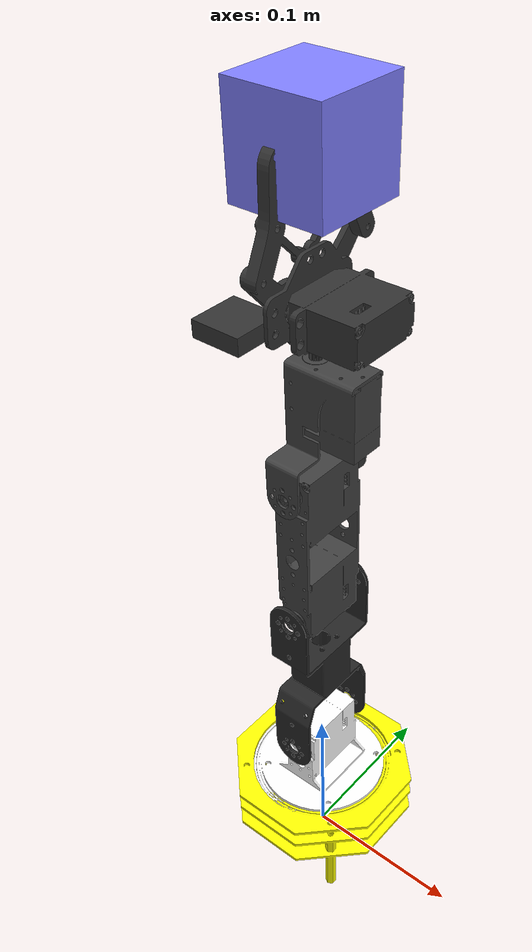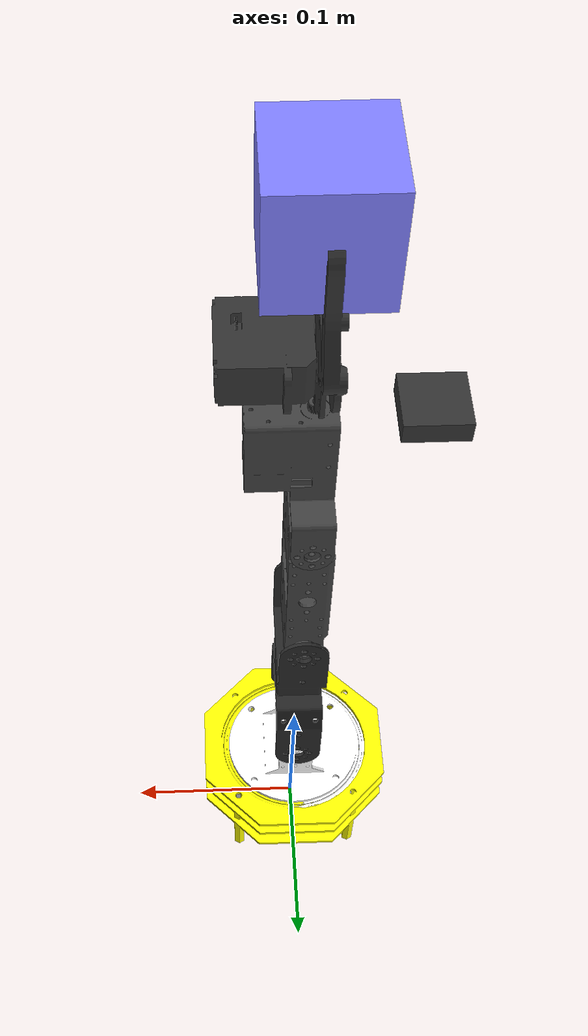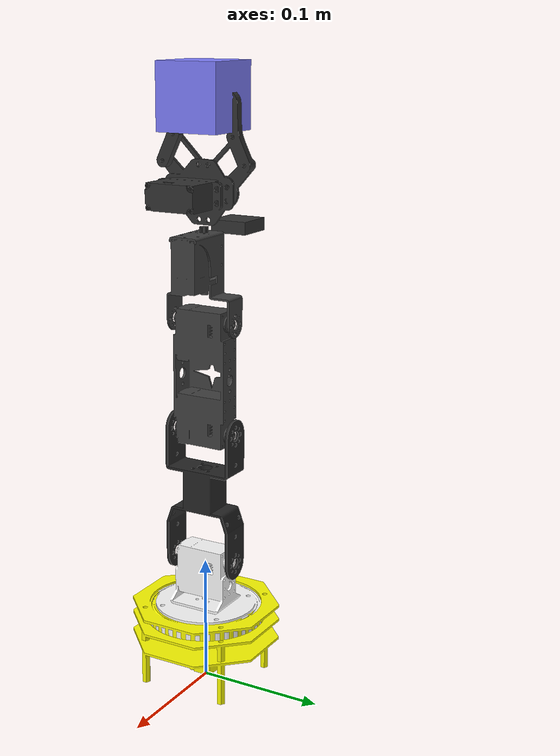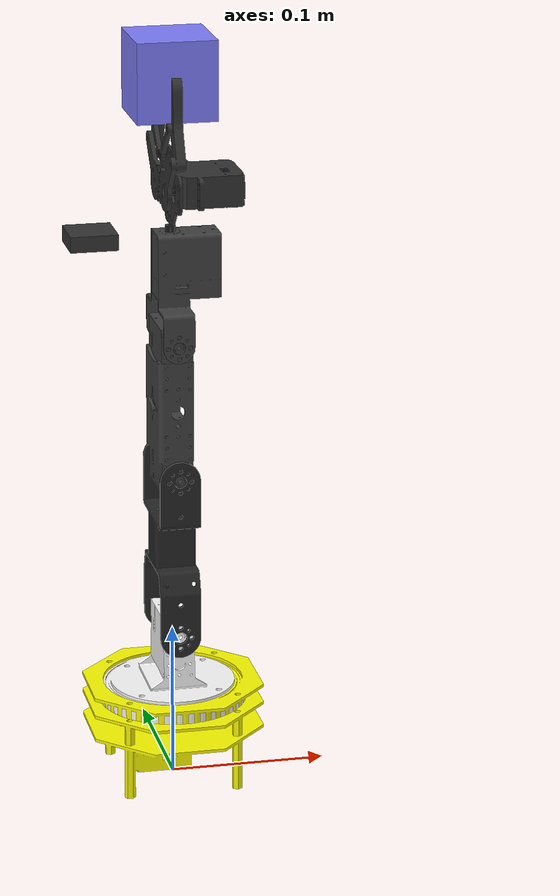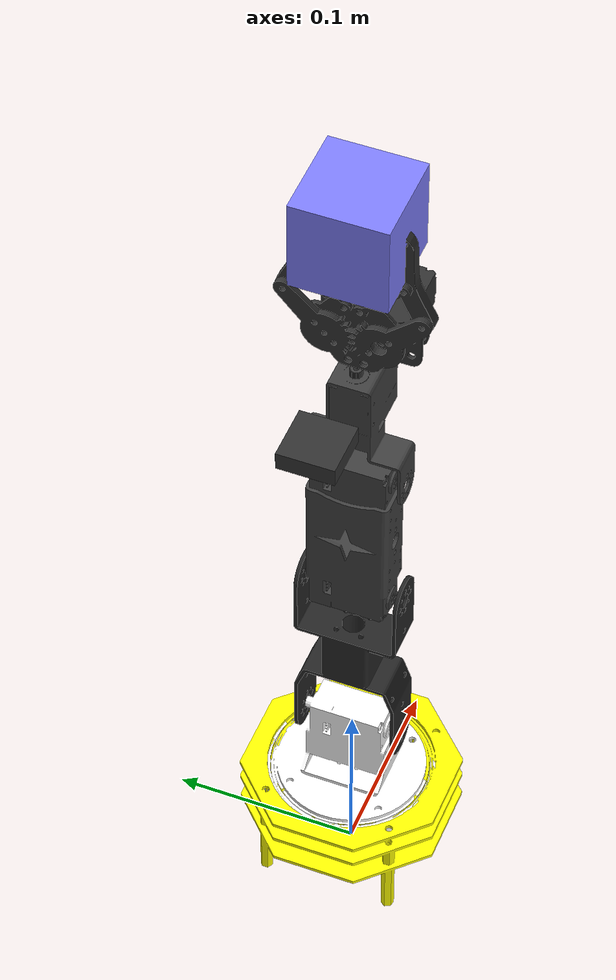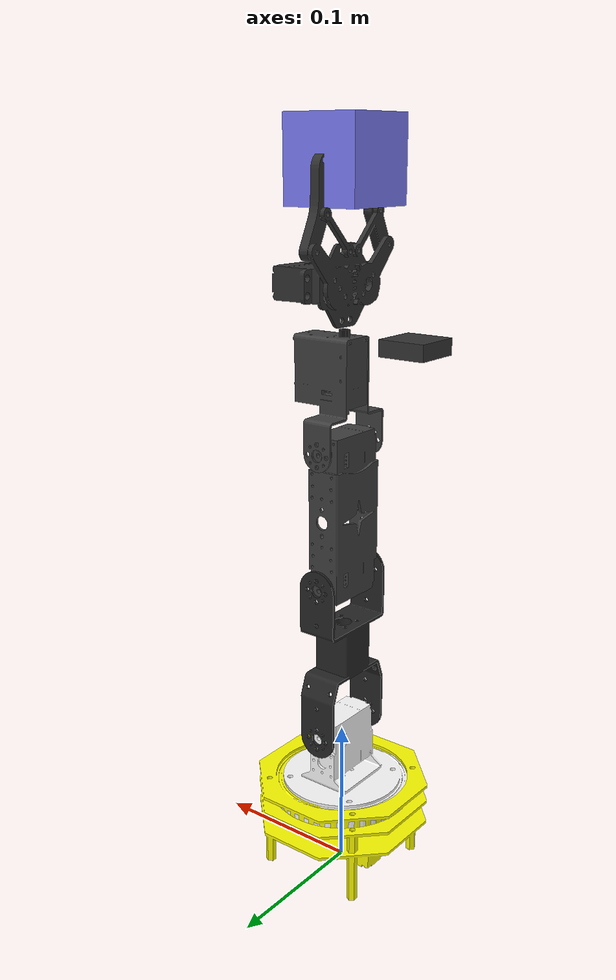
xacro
<?xml version="1.0"?>
<robot xmlns:xacro="http://www.ros.org/wiki/xacro" name="A1_description">
    <xacro:arg name="initial_positions_file" default="initial_positions.yaml" />

    <!-- Import A1_description urdf file -->
    <xacro:include filename="$(find A1_description)/urdf/A1_description.urdf" />

    <!-- Import control_xacro -->
    <xacro:include filename="A1_description.ros2_control.xacro" />

    <xacro:A1_description_ros2_control name="FakeSystem" initial_positions_file="$(arg initial_positions_file)"/>

</robot>

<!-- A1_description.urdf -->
<robot
  name="A1_description">
  <link
    name="base_footprint">
    <inertial>
      <origin
        xyz="0 0 0"
        rpy="0 0 0" />
      <mass
        value="0" />
      <inertia
        ixx="0"
        ixy="0"
        ixz="0"
        iyy="0"
        iyz="0"
        izz="0" />
    </inertial>
  </link>
  <joint
    name="world_to_base"
    type="fixed">
    <origin
      xyz="0 0 0"
      rpy="0 0 3.14159265359" />
    <parent
      link="base_footprint" />
    <child
      link="base_link" />
  </joint>
  <link
    name="base_link">
    <inertial>
      <origin
        xyz="0.00101552858041876 -1.23050644189604E-05 0.0492338256278236"
        rpy="0 0 0" />
      <mass
        value="0.303146304961026" />
      <inertia
        ixx="0.000229422866993753"
        ixy="-2.66559260806856E-10"
        ixz="8.08919655194803E-08"
        iyy="0.000232399980656072"
        iyz="9.11524933608658E-11"
        izz="0.000444426560442023" />
    </inertial>
    <visual>
      <origin
        xyz="0 0 0"
        rpy="0 0 0" />
      <geometry>
        <mesh
          filename="package://A1_description/meshes/base_link.STL" />
      </geometry>
      <material
        name="">
        <color
          rgba="1 1 0 1" />
      </material>
    </visual>
    <collision>
      <origin
        xyz="0 0 0"
        rpy="0 0 0" />
      <geometry>
        <mesh
          filename="package://A1_description/meshes/base_link.STL" />
      </geometry>
    </collision>
  </link>
  <link
    name="link1">
    <inertial>
      <origin
        xyz="-0.00242389712204533 -1.33133821402787E-05 -5.22236721844926E-06"
        rpy="0 0 0" />
      <mass
        value="0.258047338437728" />
      <inertia
        ixx="0.000392638333383343"
        ixy="2.92195112785068E-08"
        ixz="-1.47633422254501E-10"
        iyy="0.000200318680837016"
        iyz="3.80699591407616E-10"
        izz="0.000204628596173256" />
    </inertial>
    <visual>
      <origin
        xyz="0 0 0"
        rpy="0 0 0" />
      <geometry>
        <mesh
          filename="package://A1_description/meshes/link1.STL" />
      </geometry>
      <material
        name="">
        <color
          rgba="1 1 1 1" />
      </material>
    </visual>
    <collision>
      <origin
        xyz="0 0 0"
        rpy="0 0 0" />
      <geometry>
        <mesh
          filename="package://A1_description/meshes/link1.STL" />
      </geometry>
    </collision>
  </link>
  <joint
    name="joint1"
    type="revolute">
    <origin
      xyz="3.7894E-05 -3.7894E-05 0.065"
      rpy="3.1416 -1.5708 0" />
    <parent
      link="base_link" />
    <child
      link="link1" />
    <axis
      xyz="1 0 0" />
    <limit
      lower="-2.6179"
      upper="2.6179"
      effort="1"
      velocity="1" />
  </joint>
  <link
    name="link2">
    <inertial>
      <origin
        xyz="0.0559779522682743 0.0277713643302713 -1.33226762955019E-15"
        rpy="0 0 0" />
      <mass
        value="0.0292941676126594" />
      <inertia
        ixx="1.0098871364547E-05"
        ixy="1.48048521746688E-19"
        ixz="-6.46457070693473E-21"
        iyy="6.24776323259193E-06"
        iyz="-1.46947601798089E-21"
        izz="1.2676334069482E-05" />
    </inertial>
    <visual>
      <origin
        xyz="0 0 0"
        rpy="0 0 0" />
      <geometry>
        <mesh
          filename="package://A1_description/meshes/link2.STL" />
      </geometry>
      <material
        name="">
        <color
          rgba="0.149019607843137 0.149019607843137 0.149019607843137 1" />
      </material>
    </visual>
    <collision>
      <origin
        xyz="0 0 0"
        rpy="0 0 0" />
      <geometry>
        <mesh
          filename="package://A1_description/meshes/link2.STL" />
      </geometry>
    </collision>
  </link>
  <joint
    name="joint2"
    type="revolute">
    <origin
      xyz="0.0384011585138843 -0.0280427286607554 0.000112794652719517"
      rpy="0 0 0" />
    <parent
      link="link1" />
    <child
      link="link2" />
    <axis
      xyz="0 -1 0" />
    <limit
      lower="-1.5707"
      upper="1.5707"
      effort="1"
      velocity="1" />
  </joint>
  <link
    name="link3">
    <inertial>
      <origin
        xyz="0.0435807988520146 -0.0275938137640814 0.000897639461304722"
        rpy="0 0 0" />
      <mass
        value="0.07324048600557" />
      <inertia
        ixx="1.42342228458047E-05"
        ixy="-1.40703445398905E-12"
        ixz="-2.95266844703855E-10"
        iyy="1.44156892978549E-05"
        iyz="9.12662435471617E-21"
        izz="2.36438636238762E-05" />
    </inertial>
    <visual>
      <origin
        xyz="0 0 0"
        rpy="0 0 0" />
      <geometry>
        <mesh
          filename="package://A1_description/meshes/link3.STL" />
      </geometry>
      <material
        name="">
        <color
          rgba="0.250980392156863 0.250980392156863 0.250980392156863 1" />
      </material>
    </visual>
    <collision>
      <origin
        xyz="0 0 0"
        rpy="0 0 0" />
      <geometry>
        <mesh
          filename="package://A1_description/meshes/link3.STL" />
      </geometry>
    </collision>
  </link>
  <joint
    name="joint3"
    type="revolute">
    <origin
      xyz="0.10506969244116 0.0555213643303918 0"
      rpy="0 0 0" />
    <parent
      link="link2" />
    <child
      link="link3" />
    <axis
      xyz="0 1 0" />
    <limit
      lower="-2.268861111"
      upper="2.268861111"
      effort="1"
      velocity="1" />
  </joint>
  <link
    name="link4">
    <inertial>
      <origin
        xyz="0.0446657818355911 -0.0271205621084167 -0.00906240843022377"
        rpy="0 0 0" />
      <mass
        value="0.0381126564083311" />
      <inertia
        ixx="7.48254504589362E-06"
        ixy="3.80699591465632E-10"
        ixz="5.11195698063154E-07"
        iyy="1.25421846509825E-05"
        iyz="1.47633422330827E-10"
        izz="1.05051567305746E-05" />
    </inertial>
    <visual>
      <origin
        xyz="0 0 0"
        rpy="0 0 0" />
      <geometry>
        <mesh
          filename="package://A1_description/meshes/link4.STL" />
      </geometry>
      <material
        name="">
        <color
          rgba="0.250980392156863 0.250980392156863 0.250980392156863 1" />
      </material>
    </visual>
    <collision>
      <origin
        xyz="0 0 0"
        rpy="0 0 0" />
      <geometry>
        <mesh
          filename="package://A1_description/meshes/link4.STL" />
      </geometry>
    </collision>
  </link>
  <joint
    name="joint4"
    type="revolute">
    <origin
      xyz="0.0871615977040367 -0.000500000000001943 0.000311127984646831"
      rpy="0 0 0" />
    <parent
      link="link3" />
    <child
      link="link4" />
    <axis
      xyz="0 -1 0" />
    <limit
      lower="-2.443388889"
      upper="2.443388889"
      effort="1"
      velocity="1" />
  </joint>
  <link
    name="link5">
    <inertial>
      <origin
        xyz="0.0317799388191369 -0.00293083767543667 -0.0145095022099833"
        rpy="0 0 0" />
      <mass
        value="0.0455072301968907" />
      <inertia
        ixx="9.9849446696972E-06"
        ixy="-2.66504713989686E-09"
        ixz="-9.1152493354193E-11"
        iyy="7.60846958311746E-06"
        iyz="8.08919655194885E-08"
        izz="9.09220227722319E-06" />
    </inertial>
    <visual>
      <origin
        xyz="0 0 0"
        rpy="0 0 0" />
      <geometry>
        <mesh
          filename="package://A1_description/meshes/link5.STL" />
      </geometry>
      <material
        name="">
        <color
          rgba="0.196078431372549 0.196078431372549 0.196078431372549 1" />
      </material>
    </visual>
    <collision>
      <origin
        xyz="0 0 0"
        rpy="0 0 0" />
      <geometry>
        <mesh
          filename="package://A1_description/meshes/link5.STL" />
      </geometry>
    </collision>
  </link>
  <joint
    name="joint5"
    type="revolute">
    <origin
      xyz="0.0712499999999997 -0.0272500000000622 0"
      rpy="0 0 0" />
    <parent
      link="link4" />
    <child
      link="link5" />
    <axis
      xyz="1 0 0" />
    <limit
      lower="-2.356125"
      upper="2.356125"
      effort="1"
      velocity="1" />
  </joint>
  <link
    name="link6">
    <inertial>
      <origin
        xyz="0.1 0 0"
        rpy="0 0 0" />
      <mass
        value="0.01" />
      <inertia
        ixx="1e-6"
        ixy="0"
        ixz="0"
        iyy="1e-6"
        iyz="0"
        izz="1e-6" />
    </inertial>
    <visual>
      <origin
        xyz="0 0 0"
        rpy="0 0 0" />
      <geometry>
        <box size="0.05 0.05 0.05"/>
      </geometry>
      <material name="">
        <color rgba="0.5 0.5 1 1"/>
      </material>
    </visual>
    <collision>
      <origin
        xyz="0 0 0"
        rpy="0 0 0" />
      <geometry>
        <box size="0.05 0.05 0.05"/>
      </geometry>
    </collision>
  </link>
  <joint
    name="joint6"
    type="revolute">
    <origin
      xyz="0.095 0 0"
      rpy="0 0 0" />
    <parent
      link="link5" />
    <child
      link="link6" />
    <axis
      xyz="0 1 0" />
    <limit
      lower="-0.05"
      upper="0.05"
      effort="1"
      velocity="1" />
  </joint>
  <link
    name="camera_link">
    <inertial>
      <origin
        xyz="0 0 0"
        rpy="0 0 0" />
      <mass
        value="0.02" />
      <inertia
        ixx="1e-6"
        ixy="0"
        ixz="0"
        iyy="1e-6"
        iyz="0"
        izz="1e-6" />
    </inertial>
    <visual>
      <origin
        xyz="0 0 0"
        rpy="0 0 0" />
      <geometry>
        <box size="0.01 0.03 0.03"/>
      </geometry>
      <material name="">
        <color rgba="0.2 0.2 0.2 1"/>
      </material>
    </visual>
    <collision>
      <origin
        xyz="0 0 0"
        rpy="0 0 0" />
      <geometry>
        <box size="0.01 0.03 0.03"/>
      </geometry>
    </collision>
  </link>
  <joint
    name="camera_joint"
    type="fixed">
    <origin
      xyz="-0.005 0 0.05"
      rpy="0 0 0" />
    <parent
      link="link5" />
    <child
      link="camera_link" />
  </joint>
</robot>
